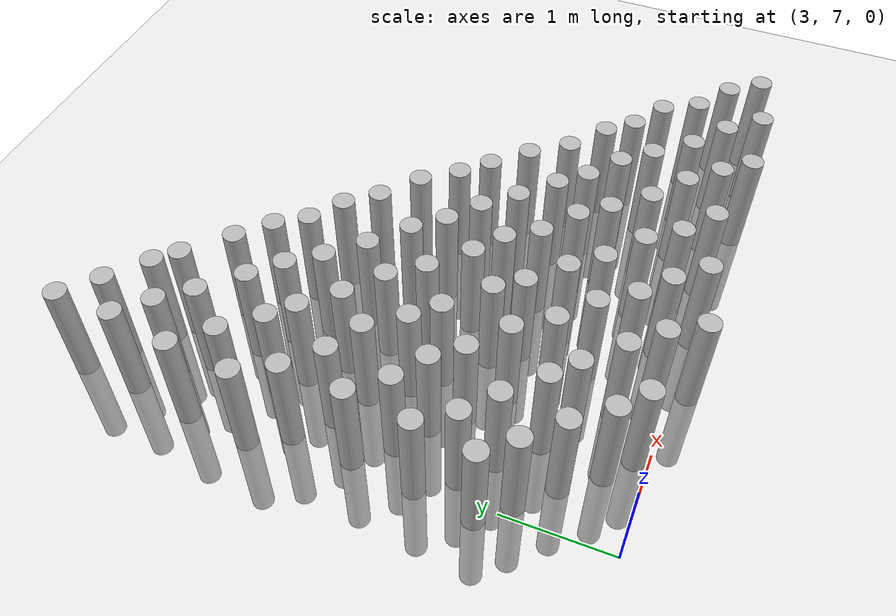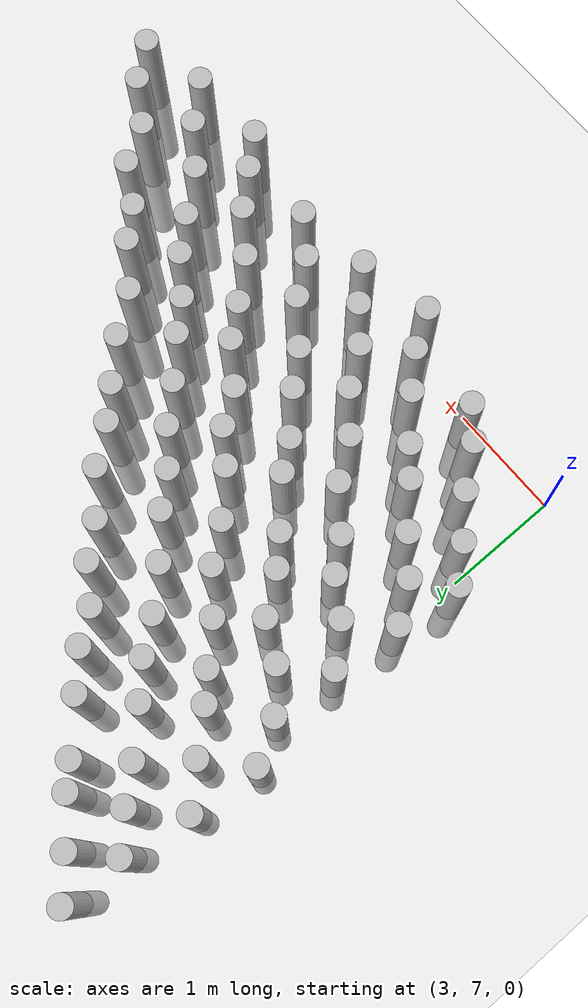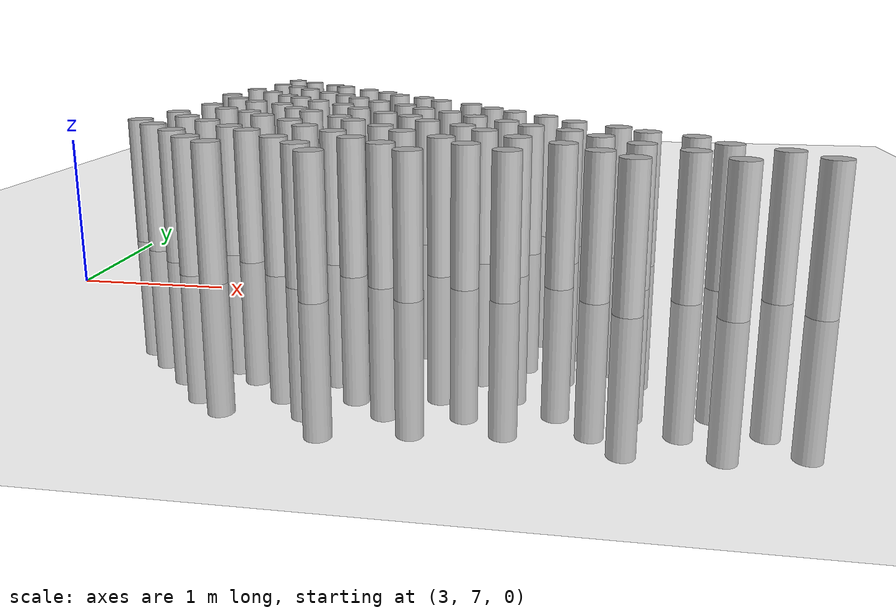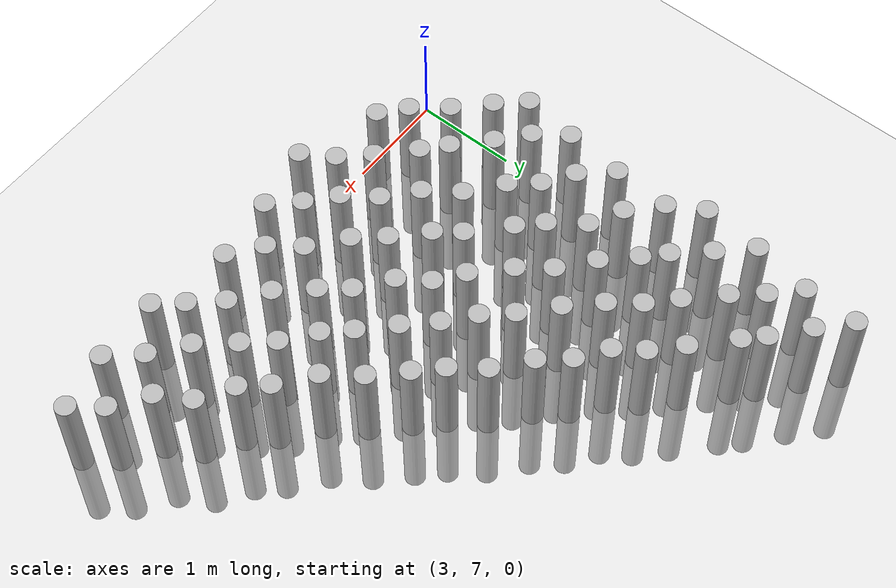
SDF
<sdf version="1.7">
 <world name="farmland_world">
  <model name="ground_plane">
   <static>1</static>
   <link name="link">
    <collision name="collision">
     <geometry><plane><normal>0 0 1</normal><size>40.0 40.0</size></plane></geometry>
     <surface><friction><ode><mu>100</mu><mu2>50</mu2></ode></friction></surface>
    </collision>
    <visual name="visual">
     <cast_shadows>0</cast_shadows>
     <geometry><plane><normal>0 0 1</normal><size>40.0 40.0</size></plane></geometry>
     <material>
      <script><uri>file://media/materials/scripts/gazebo.material</uri><name>Gazebo/Grey</name></script>
     </material>
    </visual>
   </link>
  </model>
  <model name="tree_2_136">
   <static>1</static>
   <link name="link">
    <collision name="collision">
     <geometry><cylinder><radius>0.1</radius><length>2.0</length></cylinder></geometry>
     <surface><friction><ode><mu>100</mu><mu2>50</mu2></ode></friction></surface>
    </collision>
    <visual name="visual">
     <geometry><cylinder><radius>0.1</radius><length>2.0</length></cylinder></geometry>
    </visual>
   </link>
   <pose>3.888693233230162 7.133511649381592 0 0 0 0</pose>
  </model>
  <model name="tree_2_137">
   <static>1</static>
   <link name="link">
    <collision name="collision">
     <geometry><cylinder><radius>0.1</radius><length>2.0</length></cylinder></geometry>
     <surface><friction><ode><mu>100</mu><mu2>50</mu2></ode></friction></surface>
    </collision>
    <visual name="visual">
     <geometry><cylinder><radius>0.1</radius><length>2.0</length></cylinder></geometry>
    </visual>
   </link>
   <pose>3.654509075606829 7.329846751826379 0 0 0 0</pose>
  </model>
  <model name="tree_2_138">
   <static>1</static>
   <link name="link">
    <collision name="collision">
     <geometry><cylinder><radius>0.1</radius><length>2.0</length></cylinder></geometry>
     <surface><friction><ode><mu>100</mu><mu2>50</mu2></ode></friction></surface>
    </collision>
    <visual name="visual">
     <geometry><cylinder><radius>0.1</radius><length>2.0</length></cylinder></geometry>
    </visual>
   </link>
   <pose>3.4091454209393324 7.635971533442951 0 0 0 0</pose>
  </model>
  <model name="tree_2_139">
   <static>1</static>
   <link name="link">
    <collision name="collision">
     <geometry><cylinder><radius>0.1</radius><length>2.0</length></cylinder></geometry>
     <surface><friction><ode><mu>100</mu><mu2>50</mu2></ode></friction></surface>
    </collision>
    <visual name="visual">
     <geometry><cylinder><radius>0.1</radius><length>2.0</length></cylinder></geometry>
    </visual>
   </link>
   <pose>3.123231357906554 7.918376817300706 0 0 0 0</pose>
  </model>
  <model name="tree_2_140">
   <static>1</static>
   <link name="link">
    <collision name="collision">
     <geometry><cylinder><radius>0.1</radius><length>2.0</length></cylinder></geometry>
     <surface><friction><ode><mu>100</mu><mu2>50</mu2></ode></friction></surface>
    </collision>
    <visual name="visual">
     <geometry><cylinder><radius>0.1</radius><length>2.0</length></cylinder></geometry>
    </visual>
   </link>
   <pose>2.8950278797702893 8.16930959599343 0 0 0 0</pose>
  </model>
  <model name="tree_2_172">
   <static>1</static>
   <link name="link">
    <collision name="collision">
     <geometry><cylinder><radius>0.1</radius><length>2.0</length></cylinder></geometry>
     <surface><friction><ode><mu>100</mu><mu2>50</mu2></ode></friction></surface>
    </collision>
    <visual name="visual">
     <geometry><cylinder><radius>0.1</radius><length>2.0</length></cylinder></geometry>
    </visual>
   </link>
   <pose>5.952450385894274 7.078202947347115 0 0 0 0</pose>
  </model>
  <model name="tree_2_173">
   <static>1</static>
   <link name="link">
    <collision name="collision">
     <geometry><cylinder><radius>0.1</radius><length>2.0</length></cylinder></geometry>
     <surface><friction><ode><mu>100</mu><mu2>50</mu2></ode></friction></surface>
    </collision>
    <visual name="visual">
     <geometry><cylinder><radius>0.1</radius><length>2.0</length></cylinder></geometry>
    </visual>
   </link>
   <pose>5.6549752811708665 7.302619387407444 0 0 0 0</pose>
  </model>
  <model name="tree_2_174">
   <static>1</static>
   <link name="link">
    <collision name="collision">
     <geometry><cylinder><radius>0.1</radius><length>2.0</length></cylinder></geometry>
     <surface><friction><ode><mu>100</mu><mu2>50</mu2></ode></friction></surface>
    </collision>
    <visual name="visual">
     <geometry><cylinder><radius>0.1</radius><length>2.0</length></cylinder></geometry>
    </visual>
   </link>
   <pose>5.4442150856880245 7.584135409848708 0 0 0 0</pose>
  </model>
  <model name="tree_2_175">
   <static>1</static>
   <link name="link">
    <collision name="collision">
     <geometry><cylinder><radius>0.1</radius><length>2.0</length></cylinder></geometry>
     <surface><friction><ode><mu>100</mu><mu2>50</mu2></ode></friction></surface>
    </collision>
    <visual name="visual">
     <geometry><cylinder><radius>0.1</radius><length>2.0</length></cylinder></geometry>
    </visual>
   </link>
   <pose>5.113794798143643 7.845583990078539 0 0 0 0</pose>
  </model>
  <model name="tree_2_176">
   <static>1</static>
   <link name="link">
    <collision name="collision">
     <geometry><cylinder><radius>0.1</radius><length>2.0</length></cylinder></geometry>
     <surface><friction><ode><mu>100</mu><mu2>50</mu2></ode></friction></surface>
    </collision>
    <visual name="visual">
     <geometry><cylinder><radius>0.1</radius><length>2.0</length></cylinder></geometry>
    </visual>
   </link>
   <pose>4.894133981281916 8.101473943822302 0 0 0 0</pose>
  </model>
  <model name="tree_2_177">
   <static>1</static>
   <link name="link">
    <collision name="collision">
     <geometry><cylinder><radius>0.1</radius><length>2.0</length></cylinder></geometry>
     <surface><friction><ode><mu>100</mu><mu2>50</mu2></ode></friction></surface>
    </collision>
    <visual name="visual">
     <geometry><cylinder><radius>0.1</radius><length>2.0</length></cylinder></geometry>
    </visual>
   </link>
   <pose>4.605704793721231 8.379927151728266 0 0 0 0</pose>
  </model>
  <model name="tree_2_178">
   <static>1</static>
   <link name="link">
    <collision name="collision">
     <geometry><cylinder><radius>0.1</radius><length>2.0</length></cylinder></geometry>
     <surface><friction><ode><mu>100</mu><mu2>50</mu2></ode></friction></surface>
    </collision>
    <visual name="visual">
     <geometry><cylinder><radius>0.1</radius><length>2.0</length></cylinder></geometry>
    </visual>
   </link>
   <pose>4.433490919706634 8.604116651368418 0 0 0 0</pose>
  </model>
  <model name="tree_2_179">
   <static>1</static>
   <link name="link">
    <collision name="collision">
     <geometry><cylinder><radius>0.1</radius><length>2.0</length></cylinder></geometry>
     <surface><friction><ode><mu>100</mu><mu2>50</mu2></ode></friction></surface>
    </collision>
    <visual name="visual">
     <geometry><cylinder><radius>0.1</radius><length>2.0</length></cylinder></geometry>
    </visual>
   </link>
   <pose>4.0929230212689935 8.91914617689645 0 0 0 0</pose>
  </model>
  <model name="tree_2_180">
   <static>1</static>
   <link name="link">
    <collision name="collision">
     <geometry><cylinder><radius>0.1</radius><length>2.0</length></cylinder></geometry>
     <surface><friction><ode><mu>100</mu><mu2>50</mu2></ode></friction></surface>
    </collision>
    <visual name="visual">
     <geometry><cylinder><radius>0.1</radius><length>2.0</length></cylinder></geometry>
    </visual>
   </link>
   <pose>3.890404682389312 9.12375075979459 0 0 0 0</pose>
  </model>
  <model name="tree_2_181">
   <static>1</static>
   <link name="link">
    <collision name="collision">
     <geometry><cylinder><radius>0.1</radius><length>2.0</length></cylinder></geometry>
     <surface><friction><ode><mu>100</mu><mu2>50</mu2></ode></friction></surface>
    </collision>
    <visual name="visual">
     <geometry><cylinder><radius>0.1</radius><length>2.0</length></cylinder></geometry>
    </visual>
   </link>
   <pose>3.661827254131897 9.429231106524302 0 0 0 0</pose>
  </model>
  <model name="tree_2_182">
   <static>1</static>
   <link name="link">
    <collision name="collision">
     <geometry><cylinder><radius>0.1</radius><length>2.0</length></cylinder></geometry>
     <surface><friction><ode><mu>100</mu><mu2>50</mu2></ode></friction></surface>
    </collision>
    <visual name="visual">
     <geometry><cylinder><radius>0.1</radius><length>2.0</length></cylinder></geometry>
    </visual>
   </link>
   <pose>3.3460470171255667 9.59312235304326 0 0 0 0</pose>
  </model>
  <model name="tree_2_183">
   <static>1</static>
   <link name="link">
    <collision name="collision">
     <geometry><cylinder><radius>0.1</radius><length>2.0</length></cylinder></geometry>
     <surface><friction><ode><mu>100</mu><mu2>50</mu2></ode></friction></surface>
    </collision>
    <visual name="visual">
     <geometry><cylinder><radius>0.1</radius><length>2.0</length></cylinder></geometry>
    </visual>
   </link>
   <pose>3.0629854131378105 9.857023025275346 0 0 0 0</pose>
  </model>
  <model name="tree_2_184">
   <static>1</static>
   <link name="link">
    <collision name="collision">
     <geometry><cylinder><radius>0.1</radius><length>2.0</length></cylinder></geometry>
     <surface><friction><ode><mu>100</mu><mu2>50</mu2></ode></friction></surface>
    </collision>
    <visual name="visual">
     <geometry><cylinder><radius>0.1</radius><length>2.0</length></cylinder></geometry>
    </visual>
   </link>
   <pose>2.8706002859704336 10.187543218371351 0 0 0 0</pose>
  </model>
  <model name="tree_2_208">
   <static>1</static>
   <link name="link">
    <collision name="collision">
     <geometry><cylinder><radius>0.1</radius><length>2.0</length></cylinder></geometry>
     <surface><friction><ode><mu>100</mu><mu2>50</mu2></ode></friction></surface>
    </collision>
    <visual name="visual">
     <geometry><cylinder><radius>0.1</radius><length>2.0</length></cylinder></geometry>
    </visual>
   </link>
   <pose>7.9558364137625635 7.0556702100759745 0 0 0 0</pose>
  </model>
  <model name="tree_2_209">
   <static>1</static>
   <link name="link">
    <collision name="collision">
     <geometry><cylinder><radius>0.1</radius><length>2.0</length></cylinder></geometry>
     <surface><friction><ode><mu>100</mu><mu2>50</mu2></ode></friction></surface>
    </collision>
    <visual name="visual">
     <geometry><cylinder><radius>0.1</radius><length>2.0</length></cylinder></geometry>
    </visual>
   </link>
   <pose>7.741567550530401 7.33041775570723 0 0 0 0</pose>
  </model>
  <model name="tree_2_210">
   <static>1</static>
   <link name="link">
    <collision name="collision">
     <geometry><cylinder><radius>0.1</radius><length>2.0</length></cylinder></geometry>
     <surface><friction><ode><mu>100</mu><mu2>50</mu2></ode></friction></surface>
    </collision>
    <visual name="visual">
     <geometry><cylinder><radius>0.1</radius><length>2.0</length></cylinder></geometry>
    </visual>
   </link>
   <pose>7.403168127117262 7.559136781097317 0 0 0 0</pose>
  </model>
  <model name="tree_2_211">
   <static>1</static>
   <link name="link">
    <collision name="collision">
     <geometry><cylinder><radius>0.1</radius><length>2.0</length></cylinder></geometry>
     <surface><friction><ode><mu>100</mu><mu2>50</mu2></ode></friction></surface>
    </collision>
    <visual name="visual">
     <geometry><cylinder><radius>0.1</radius><length>2.0</length></cylinder></geometry>
    </visual>
   </link>
   <pose>7.222942820960048 7.868198078070332 0 0 0 0</pose>
  </model>
  <model name="tree_2_212">
   <static>1</static>
   <link name="link">
    <collision name="collision">
     <geometry><cylinder><radius>0.1</radius><length>2.0</length></cylinder></geometry>
     <surface><friction><ode><mu>100</mu><mu2>50</mu2></ode></friction></surface>
    </collision>
    <visual name="visual">
     <geometry><cylinder><radius>0.1</radius><length>2.0</length></cylinder></geometry>
    </visual>
   </link>
   <pose>6.899074799613628 8.066492041130159 0 0 0 0</pose>
  </model>
  <model name="tree_2_213">
   <static>1</static>
   <link name="link">
    <collision name="collision">
     <geometry><cylinder><radius>0.1</radius><length>2.0</length></cylinder></geometry>
     <surface><friction><ode><mu>100</mu><mu2>50</mu2></ode></friction></surface>
    </collision>
    <visual name="visual">
     <geometry><cylinder><radius>0.1</radius><length>2.0</length></cylinder></geometry>
    </visual>
   </link>
   <pose>6.698600977082151 8.292292143059376 0 0 0 0</pose>
  </model>
  <model name="tree_2_214">
   <static>1</static>
   <link name="link">
    <collision name="collision">
     <geometry><cylinder><radius>0.1</radius><length>2.0</length></cylinder></geometry>
     <surface><friction><ode><mu>100</mu><mu2>50</mu2></ode></friction></surface>
    </collision>
    <visual name="visual">
     <geometry><cylinder><radius>0.1</radius><length>2.0</length></cylinder></geometry>
    </visual>
   </link>
   <pose>6.363341396567351 8.547092053314994 0 0 0 0</pose>
  </model>
  <model name="tree_2_215">
   <static>1</static>
   <link name="link">
    <collision name="collision">
     <geometry><cylinder><radius>0.1</radius><length>2.0</length></cylinder></geometry>
     <surface><friction><ode><mu>100</mu><mu2>50</mu2></ode></friction></surface>
    </collision>
    <visual name="visual">
     <geometry><cylinder><radius>0.1</radius><length>2.0</length></cylinder></geometry>
    </visual>
   </link>
   <pose>6.126679979161093 8.863656415832939 0 0 0 0</pose>
  </model>
  <model name="tree_2_216">
   <static>1</static>
   <link name="link">
    <collision name="collision">
     <geometry><cylinder><radius>0.1</radius><length>2.0</length></cylinder></geometry>
     <surface><friction><ode><mu>100</mu><mu2>50</mu2></ode></friction></surface>
    </collision>
    <visual name="visual">
     <geometry><cylinder><radius>0.1</radius><length>2.0</length></cylinder></geometry>
    </visual>
   </link>
   <pose>5.8485013888478115 9.144993997474778 0 0 0 0</pose>
  </model>
  <model name="tree_2_217">
   <static>1</static>
   <link name="link">
    <collision name="collision">
     <geometry><cylinder><radius>0.1</radius><length>2.0</length></cylinder></geometry>
     <surface><friction><ode><mu>100</mu><mu2>50</mu2></ode></friction></surface>
    </collision>
    <visual name="visual">
     <geometry><cylinder><radius>0.1</radius><length>2.0</length></cylinder></geometry>
    </visual>
   </link>
   <pose>5.6300340594649025 9.364776709456883 0 0 0 0</pose>
  </model>
  <model name="tree_2_218">
   <static>1</static>
   <link name="link">
    <collision name="collision">
     <geometry><cylinder><radius>0.1</radius><length>2.0</length></cylinder></geometry>
     <surface><friction><ode><mu>100</mu><mu2>50</mu2></ode></friction></surface>
    </collision>
    <visual name="visual">
     <geometry><cylinder><radius>0.1</radius><length>2.0</length></cylinder></geometry>
    </visual>
   </link>
   <pose>5.4064297371227195 9.657819548647934 0 0 0 0</pose>
  </model>
  <model name="tree_2_219">
   <static>1</static>
   <link name="link">
    <collision name="collision">
     <geometry><cylinder><radius>0.1</radius><length>2.0</length></cylinder></geometry>
     <surface><friction><ode><mu>100</mu><mu2>50</mu2></ode></friction></surface>
    </collision>
    <visual name="visual">
     <geometry><cylinder><radius>0.1</radius><length>2.0</length></cylinder></geometry>
    </visual>
   </link>
   <pose>5.086273557018613 9.916277305392974 0 0 0 0</pose>
  </model>
  <model name="tree_2_220">
   <static>1</static>
   <link name="link">
    <collision name="collision">
     <geometry><cylinder><radius>0.1</radius><length>2.0</length></cylinder></geometry>
     <surface><friction><ode><mu>100</mu><mu2>50</mu2></ode></friction></surface>
    </collision>
    <visual name="visual">
     <geometry><cylinder><radius>0.1</radius><length>2.0</length></cylinder></geometry>
    </visual>
   </link>
   <pose>4.871750153222545 10.170677854982912 0 0 0 0</pose>
  </model>
  <model name="tree_2_221">
   <static>1</static>
   <link name="link">
    <collision name="collision">
     <geometry><cylinder><radius>0.1</radius><length>2.0</length></cylinder></geometry>
     <surface><friction><ode><mu>100</mu><mu2>50</mu2></ode></friction></surface>
    </collision>
    <visual name="visual">
     <geometry><cylinder><radius>0.1</radius><length>2.0</length></cylinder></geometry>
    </visual>
   </link>
   <pose>4.588298820437973 10.367630110053323 0 0 0 0</pose>
  </model>
  <model name="tree_2_222">
   <static>1</static>
   <link name="link">
    <collision name="collision">
     <geometry><cylinder><radius>0.1</radius><length>2.0</length></cylinder></geometry>
     <surface><friction><ode><mu>100</mu><mu2>50</mu2></ode></friction></surface>
    </collision>
    <visual name="visual">
     <geometry><cylinder><radius>0.1</radius><length>2.0</length></cylinder></geometry>
    </visual>
   </link>
   <pose>4.408696738701235 10.622461447968764 0 0 0 0</pose>
  </model>
  <model name="tree_2_223">
   <static>1</static>
   <link name="link">
    <collision name="collision">
     <geometry><cylinder><radius>0.1</radius><length>2.0</length></cylinder></geometry>
     <surface><friction><ode><mu>100</mu><mu2>50</mu2></ode></friction></surface>
    </collision>
    <visual name="visual">
     <geometry><cylinder><radius>0.1</radius><length>2.0</length></cylinder></geometry>
    </visual>
   </link>
   <pose>4.152430932762426 10.865678735279044 0 0 0 0</pose>
  </model>
  <model name="tree_2_224">
   <static>1</static>
   <link name="link">
    <collision name="collision">
     <geometry><cylinder><radius>0.1</radius><length>2.0</length></cylinder></geometry>
     <surface><friction><ode><mu>100</mu><mu2>50</mu2></ode></friction></surface>
    </collision>
    <visual name="visual">
     <geometry><cylinder><radius>0.1</radius><length>2.0</length></cylinder></geometry>
    </visual>
   </link>
   <pose>3.807048227955117 11.19341693501709 0 0 0 0</pose>
  </model>
  <model name="tree_2_225">
   <static>1</static>
   <link name="link">
    <collision name="collision">
     <geometry><cylinder><radius>0.1</radius><length>2.0</length></cylinder></geometry>
     <surface><friction><ode><mu>100</mu><mu2>50</mu2></ode></friction></surface>
    </collision>
    <visual name="visual">
     <geometry><cylinder><radius>0.1</radius><length>2.0</length></cylinder></geometry>
    </visual>
   </link>
   <pose>3.639403190359429 11.360542560022534 0 0 0 0</pose>
  </model>
  <model name="tree_2_226">
   <static>1</static>
   <link name="link">
    <collision name="collision">
     <geometry><cylinder><radius>0.1</radius><length>2.0</length></cylinder></geometry>
     <surface><friction><ode><mu>100</mu><mu2>50</mu2></ode></friction></surface>
    </collision>
    <visual name="visual">
     <geometry><cylinder><radius>0.1</radius><length>2.0</length></cylinder></geometry>
    </visual>
   </link>
   <pose>3.3174018631343185 11.631470990059555 0 0 0 0</pose>
  </model>
  <model name="tree_2_227">
   <static>1</static>
   <link name="link">
    <collision name="collision">
     <geometry><cylinder><radius>0.1</radius><length>2.0</length></cylinder></geometry>
     <surface><friction><ode><mu>100</mu><mu2>50</mu2></ode></friction></surface>
    </collision>
    <visual name="visual">
     <geometry><cylinder><radius>0.1</radius><length>2.0</length></cylinder></geometry>
    </visual>
   </link>
   <pose>3.032423095262421 11.89007656196763 0 0 0 0</pose>
  </model>
  <model name="tree_2_414">
   <static>1</static>
   <link name="link">
    <collision name="collision">
     <geometry><cylinder><radius>0.1</radius><length>2.0</length></cylinder></geometry>
     <surface><friction><ode><mu>100</mu><mu2>50</mu2></ode></friction></surface>
    </collision>
    <visual name="visual">
     <geometry><cylinder><radius>0.1</radius><length>2.0</length></cylinder></geometry>
    </visual>
   </link>
   <pose>4.694424488251541 6.870581449803361 0 0 0 0</pose>
  </model>
  <model name="tree_2_415">
   <static>1</static>
   <link name="link">
    <collision name="collision">
     <geometry><cylinder><radius>0.1</radius><length>2.0</length></cylinder></geometry>
     <surface><friction><ode><mu>100</mu><mu2>50</mu2></ode></friction></surface>
    </collision>
    <visual name="visual">
     <geometry><cylinder><radius>0.1</radius><length>2.0</length></cylinder></geometry>
    </visual>
   </link>
   <pose>4.512259165251804 7.163615199318107 0 0 0 0</pose>
  </model>
  <model name="tree_2_416">
   <static>1</static>
   <link name="link">
    <collision name="collision">
     <geometry><cylinder><radius>0.1</radius><length>2.0</length></cylinder></geometry>
     <surface><friction><ode><mu>100</mu><mu2>50</mu2></ode></friction></surface>
    </collision>
    <visual name="visual">
     <geometry><cylinder><radius>0.1</radius><length>2.0</length></cylinder></geometry>
    </visual>
   </link>
   <pose>4.271443828924135 7.417870629831058 0 0 0 0</pose>
  </model>
  <model name="tree_2_417">
   <static>1</static>
   <link name="link">
    <collision name="collision">
     <geometry><cylinder><radius>0.1</radius><length>2.0</length></cylinder></geometry>
     <surface><friction><ode><mu>100</mu><mu2>50</mu2></ode></friction></surface>
    </collision>
    <visual name="visual">
     <geometry><cylinder><radius>0.1</radius><length>2.0</length></cylinder></geometry>
    </visual>
   </link>
   <pose>3.964626299940033 7.7113183892078725 0 0 0 0</pose>
  </model>
  <model name="tree_2_418">
   <static>1</static>
   <link name="link">
    <collision name="collision">
     <geometry><cylinder><radius>0.1</radius><length>2.0</length></cylinder></geometry>
     <surface><friction><ode><mu>100</mu><mu2>50</mu2></ode></friction></surface>
    </collision>
    <visual name="visual">
     <geometry><cylinder><radius>0.1</radius><length>2.0</length></cylinder></geometry>
    </visual>
   </link>
   <pose>3.7533877989019895 7.896384370758228 0 0 0 0</pose>
  </model>
  <model name="tree_2_419">
   <static>1</static>
   <link name="link">
    <collision name="collision">
     <geometry><cylinder><radius>0.1</radius><length>2.0</length></cylinder></geometry>
     <surface><friction><ode><mu>100</mu><mu2>50</mu2></ode></friction></surface>
    </collision>
    <visual name="visual">
     <geometry><cylinder><radius>0.1</radius><length>2.0</length></cylinder></geometry>
    </visual>
   </link>
   <pose>3.4533599392067087 8.186344273402574 0 0 0 0</pose>
  </model>
  <model name="tree_2_420">
   <static>1</static>
   <link name="link">
    <collision name="collision">
     <geometry><cylinder><radius>0.1</radius><length>2.0</length></cylinder></geometry>
     <surface><friction><ode><mu>100</mu><mu2>50</mu2></ode></friction></surface>
    </collision>
    <visual name="visual">
     <geometry><cylinder><radius>0.1</radius><length>2.0</length></cylinder></geometry>
    </visual>
   </link>
   <pose>3.180855373746649 8.416810719651275 0 0 0 0</pose>
  </model>
  <model name="tree_2_421">
   <static>1</static>
   <link name="link">
    <collision name="collision">
     <geometry><cylinder><radius>0.1</radius><length>2.0</length></cylinder></geometry>
     <surface><friction><ode><mu>100</mu><mu2>50</mu2></ode></friction></surface>
    </collision>
    <visual name="visual">
     <geometry><cylinder><radius>0.1</radius><length>2.0</length></cylinder></geometry>
    </visual>
   </link>
   <pose>2.9679653413036795 8.711844141299766 0 0 0 0</pose>
  </model>
  <model name="tree_2_453">
   <static>1</static>
   <link name="link">
    <collision name="collision">
     <geometry><cylinder><radius>0.1</radius><length>2.0</length></cylinder></geometry>
     <surface><friction><ode><mu>100</mu><mu2>50</mu2></ode></friction></surface>
    </collision>
    <visual name="visual">
     <geometry><cylinder><radius>0.1</radius><length>2.0</length></cylinder></geometry>
    </visual>
   </link>
   <pose>5.3167262637779364 6.99487707094682 0 0 0 0</pose>
  </model>
  <model name="tree_2_454">
   <static>1</static>
   <link name="link">
    <collision name="collision">
     <geometry><cylinder><radius>0.1</radius><length>2.0</length></cylinder></geometry>
     <surface><friction><ode><mu>100</mu><mu2>50</mu2></ode></friction></surface>
    </collision>
    <visual name="visual">
     <geometry><cylinder><radius>0.1</radius><length>2.0</length></cylinder></geometry>
    </visual>
   </link>
   <pose>5.081042043479526 7.253355868614857 0 0 0 0</pose>
  </model>
  <model name="tree_2_455">
   <static>1</static>
   <link name="link">
    <collision name="collision">
     <geometry><cylinder><radius>0.1</radius><length>2.0</length></cylinder></geometry>
     <surface><friction><ode><mu>100</mu><mu2>50</mu2></ode></friction></surface>
    </collision>
    <visual name="visual">
     <geometry><cylinder><radius>0.1</radius><length>2.0</length></cylinder></geometry>
    </visual>
   </link>
   <pose>4.819779328568664 7.472760022319296 0 0 0 0</pose>
  </model>
  <model name="tree_2_456">
   <static>1</static>
   <link name="link">
    <collision name="collision">
     <geometry><cylinder><radius>0.1</radius><length>2.0</length></cylinder></geometry>
     <surface><friction><ode><mu>100</mu><mu2>50</mu2></ode></friction></surface>
    </collision>
    <visual name="visual">
     <geometry><cylinder><radius>0.1</radius><length>2.0</length></cylinder></geometry>
    </visual>
   </link>
   <pose>4.607918084694503 7.766116967986567 0 0 0 0</pose>
  </model>
  <model name="tree_2_457">
   <static>1</static>
   <link name="link">
    <collision name="collision">
     <geometry><cylinder><radius>0.1</radius><length>2.0</length></cylinder></geometry>
     <surface><friction><ode><mu>100</mu><mu2>50</mu2></ode></friction></surface>
    </collision>
    <visual name="visual">
     <geometry><cylinder><radius>0.1</radius><length>2.0</length></cylinder></geometry>
    </visual>
   </link>
   <pose>4.315517529025326 8.016492051092163 0 0 0 0</pose>
  </model>
  <model name="tree_2_458">
   <static>1</static>
   <link name="link">
    <collision name="collision">
     <geometry><cylinder><radius>0.1</radius><length>2.0</length></cylinder></geometry>
     <surface><friction><ode><mu>100</mu><mu2>50</mu2></ode></friction></surface>
    </collision>
    <visual name="visual">
     <geometry><cylinder><radius>0.1</radius><length>2.0</length></cylinder></geometry>
    </visual>
   </link>
   <pose>4.093970977008203 8.32517646430303 0 0 0 0</pose>
  </model>
  <model name="tree_2_459">
   <static>1</static>
   <link name="link">
    <collision name="collision">
     <geometry><cylinder><radius>0.1</radius><length>2.0</length></cylinder></geometry>
     <surface><friction><ode><mu>100</mu><mu2>50</mu2></ode></friction></surface>
    </collision>
    <visual name="visual">
     <geometry><cylinder><radius>0.1</radius><length>2.0</length></cylinder></geometry>
    </visual>
   </link>
   <pose>3.7714064971297283 8.582797637863566 0 0 0 0</pose>
  </model>
  <model name="tree_2_460">
   <static>1</static>
   <link name="link">
    <collision name="collision">
     <geometry><cylinder><radius>0.1</radius><length>2.0</length></cylinder></geometry>
     <surface><friction><ode><mu>100</mu><mu2>50</mu2></ode></friction></surface>
    </collision>
    <visual name="visual">
     <geometry><cylinder><radius>0.1</radius><length>2.0</length></cylinder></geometry>
    </visual>
   </link>
   <pose>3.568150553219607 8.821732544916662 0 0 0 0</pose>
  </model>
  <model name="tree_2_461">
   <static>1</static>
   <link name="link">
    <collision name="collision">
     <geometry><cylinder><radius>0.1</radius><length>2.0</length></cylinder></geometry>
     <surface><friction><ode><mu>100</mu><mu2>50</mu2></ode></friction></surface>
    </collision>
    <visual name="visual">
     <geometry><cylinder><radius>0.1</radius><length>2.0</length></cylinder></geometry>
    </visual>
   </link>
   <pose>3.2839316504617755 9.009784880074877 0 0 0 0</pose>
  </model>
  <model name="tree_2_462">
   <static>1</static>
   <link name="link">
    <collision name="collision">
     <geometry><cylinder><radius>0.1</radius><length>2.0</length></cylinder></geometry>
     <surface><friction><ode><mu>100</mu><mu2>50</mu2></ode></friction></surface>
    </collision>
    <visual name="visual">
     <geometry><cylinder><radius>0.1</radius><length>2.0</length></cylinder></geometry>
    </visual>
   </link>
   <pose>3.0298036590419155 9.29274655015253 0 0 0 0</pose>
  </model>
  <model name="tree_2_490">
   <static>1</static>
   <link name="link">
    <collision name="collision">
     <geometry><cylinder><radius>0.1</radius><length>2.0</length></cylinder></geometry>
     <surface><friction><ode><mu>100</mu><mu2>50</mu2></ode></friction></surface>
    </collision>
    <visual name="visual">
     <geometry><cylinder><radius>0.1</radius><length>2.0</length></cylinder></geometry>
    </visual>
   </link>
   <pose>6.747186979006258 6.915327336026179 0 0 0 0</pose>
  </model>
  <model name="tree_2_491">
   <static>1</static>
   <link name="link">
    <collision name="collision">
     <geometry><cylinder><radius>0.1</radius><length>2.0</length></cylinder></geometry>
     <surface><friction><ode><mu>100</mu><mu2>50</mu2></ode></friction></surface>
    </collision>
    <visual name="visual">
     <geometry><cylinder><radius>0.1</radius><length>2.0</length></cylinder></geometry>
    </visual>
   </link>
   <pose>6.541713320764692 7.153533238972991 0 0 0 0</pose>
  </model>
  <model name="tree_2_492">
   <static>1</static>
   <link name="link">
    <collision name="collision">
     <geometry><cylinder><radius>0.1</radius><length>2.0</length></cylinder></geometry>
     <surface><friction><ode><mu>100</mu><mu2>50</mu2></ode></friction></surface>
    </collision>
    <visual name="visual">
     <geometry><cylinder><radius>0.1</radius><length>2.0</length></cylinder></geometry>
    </visual>
   </link>
   <pose>6.3020962801080875 7.4183642916262515 0 0 0 0</pose>
  </model>
  <model name="tree_2_493">
   <static>1</static>
   <link name="link">
    <collision name="collision">
     <geometry><cylinder><radius>0.1</radius><length>2.0</length></cylinder></geometry>
     <surface><friction><ode><mu>100</mu><mu2>50</mu2></ode></friction></surface>
    </collision>
    <visual name="visual">
     <geometry><cylinder><radius>0.1</radius><length>2.0</length></cylinder></geometry>
    </visual>
   </link>
   <pose>5.978684391982626 7.66441952000785 0 0 0 0</pose>
  </model>
  <model name="tree_2_494">
   <static>1</static>
   <link name="link">
    <collision name="collision">
     <geometry><cylinder><radius>0.1</radius><length>2.0</length></cylinder></geometry>
     <surface><friction><ode><mu>100</mu><mu2>50</mu2></ode></friction></surface>
    </collision>
    <visual name="visual">
     <geometry><cylinder><radius>0.1</radius><length>2.0</length></cylinder></geometry>
    </visual>
   </link>
   <pose>5.711923251711461 7.963961073841952 0 0 0 0</pose>
  </model>
  <model name="tree_2_495">
   <static>1</static>
   <link name="link">
    <collision name="collision">
     <geometry><cylinder><radius>0.1</radius><length>2.0</length></cylinder></geometry>
     <surface><friction><ode><mu>100</mu><mu2>50</mu2></ode></friction></surface>
    </collision>
    <visual name="visual">
     <geometry><cylinder><radius>0.1</radius><length>2.0</length></cylinder></geometry>
    </visual>
   </link>
   <pose>5.515467026569733 8.206858386193204 0 0 0 0</pose>
  </model>
  <model name="tree_2_496">
   <static>1</static>
   <link name="link">
    <collision name="collision">
     <geometry><cylinder><radius>0.1</radius><length>2.0</length></cylinder></geometry>
     <surface><friction><ode><mu>100</mu><mu2>50</mu2></ode></friction></surface>
    </collision>
    <visual name="visual">
     <geometry><cylinder><radius>0.1</radius><length>2.0</length></cylinder></geometry>
    </visual>
   </link>
   <pose>5.200333376674219 8.439116687887442 0 0 0 0</pose>
  </model>
  <model name="tree_2_497">
   <static>1</static>
   <link name="link">
    <collision name="collision">
     <geometry><cylinder><radius>0.1</radius><length>2.0</length></cylinder></geometry>
     <surface><friction><ode><mu>100</mu><mu2>50</mu2></ode></friction></surface>
    </collision>
    <visual name="visual">
     <geometry><cylinder><radius>0.1</radius><length>2.0</length></cylinder></geometry>
    </visual>
   </link>
   <pose>5.012469929930804 8.71080820746061 0 0 0 0</pose>
  </model>
  <model name="tree_2_498">
   <static>1</static>
   <link name="link">
    <collision name="collision">
     <geometry><cylinder><radius>0.1</radius><length>2.0</length></cylinder></geometry>
     <surface><friction><ode><mu>100</mu><mu2>50</mu2></ode></friction></surface>
    </collision>
    <visual name="visual">
     <geometry><cylinder><radius>0.1</radius><length>2.0</length></cylinder></geometry>
    </visual>
   </link>
   <pose>4.755530273327819 8.900165110711722 0 0 0 0</pose>
  </model>
  <model name="tree_2_499">
   <static>1</static>
   <link name="link">
    <collision name="collision">
     <geometry><cylinder><radius>0.1</radius><length>2.0</length></cylinder></geometry>
     <surface><friction><ode><mu>100</mu><mu2>50</mu2></ode></friction></surface>
    </collision>
    <visual name="visual">
     <geometry><cylinder><radius>0.1</radius><length>2.0</length></cylinder></geometry>
    </visual>
   </link>
   <pose>4.451065199745261 9.197874380513568 0 0 0 0</pose>
  </model>
  <model name="tree_2_500">
   <static>1</static>
   <link name="link">
    <collision name="collision">
     <geometry><cylinder><radius>0.1</radius><length>2.0</length></cylinder></geometry>
     <surface><friction><ode><mu>100</mu><mu2>50</mu2></ode></friction></surface>
    </collision>
    <visual name="visual">
     <geometry><cylinder><radius>0.1</radius><length>2.0</length></cylinder></geometry>
    </visual>
   </link>
   <pose>4.232042042254356 9.478284355588743 0 0 0 0</pose>
  </model>
  <model name="tree_2_501">
   <static>1</static>
   <link name="link">
    <collision name="collision">
     <geometry><cylinder><radius>0.1</radius><length>2.0</length></cylinder></geometry>
     <surface><friction><ode><mu>100</mu><mu2>50</mu2></ode></friction></surface>
    </collision>
    <visual name="visual">
     <geometry><cylinder><radius>0.1</radius><length>2.0</length></cylinder></geometry>
    </visual>
   </link>
   <pose>3.9223623291251806 9.729180491194507 0 0 0 0</pose>
  </model>
  <model name="tree_2_502">
   <static>1</static>
   <link name="link">
    <collision name="collision">
     <geometry><cylinder><radius>0.1</radius><length>2.0</length></cylinder></geometry>
     <surface><friction><ode><mu>100</mu><mu2>50</mu2></ode></friction></surface>
    </collision>
    <visual name="visual">
     <geometry><cylinder><radius>0.1</radius><length>2.0</length></cylinder></geometry>
    </visual>
   </link>
   <pose>3.6580382440649335 10.005810489067501 0 0 0 0</pose>
  </model>
  <model name="tree_2_503">
   <static>1</static>
   <link name="link">
    <collision name="collision">
     <geometry><cylinder><radius>0.1</radius><length>2.0</length></cylinder></geometry>
     <surface><friction><ode><mu>100</mu><mu2>50</mu2></ode></friction></surface>
    </collision>
    <visual name="visual">
     <geometry><cylinder><radius>0.1</radius><length>2.0</length></cylinder></geometry>
    </visual>
   </link>
   <pose>3.4645376553900165 10.189264881045057 0 0 0 0</pose>
  </model>
  <model name="tree_2_504">
   <static>1</static>
   <link name="link">
    <collision name="collision">
     <geometry><cylinder><radius>0.1</radius><length>2.0</length></cylinder></geometry>
     <surface><friction><ode><mu>100</mu><mu2>50</mu2></ode></friction></surface>
    </collision>
    <visual name="visual">
     <geometry><cylinder><radius>0.1</radius><length>2.0</length></cylinder></geometry>
    </visual>
   </link>
   <pose>3.2004010919190757 10.489592315998332 0 0 0 0</pose>
  </model>
  <model name="tree_2_505">
   <static>1</static>
   <link name="link">
    <collision name="collision">
     <geometry><cylinder><radius>0.1</radius><length>2.0</length></cylinder></geometry>
     <surface><friction><ode><mu>100</mu><mu2>50</mu2></ode></friction></surface>
    </collision>
    <visual name="visual">
     <geometry><cylinder><radius>0.1</radius><length>2.0</length></cylinder></geometry>
    </visual>
   </link>
   <pose>2.924112338791858 10.776580731895502 0 0 0 0</pose>
  </model>
  <model name="tree_2_529">
   <static>1</static>
   <link name="link">
    <collision name="collision">
     <geometry><cylinder><radius>0.1</radius><length>2.0</length></cylinder></geometry>
     <surface><friction><ode><mu>100</mu><mu2>50</mu2></ode></friction></surface>
    </collision>
    <visual name="visual">
     <geometry><cylinder><radius>0.1</radius><length>2.0</length></cylinder></geometry>
    </visual>
   </link>
   <pose>7.400628963406755 6.944557451080172 0 0 0 0</pose>
  </model>
  <model name="tree_2_530">
   <static>1</static>
   <link name="link">
    <collision name="collision">
     <geometry><cylinder><radius>0.1</radius><length>2.0</length></cylinder></geometry>
     <surface><friction><ode><mu>100</mu><mu2>50</mu2></ode></friction></surface>
    </collision>
    <visual name="visual">
     <geometry><cylinder><radius>0.1</radius><length>2.0</length></cylinder></geometry>
    </visual>
   </link>
   <pose>7.145215640994573 7.2326370048598125 0 0 0 0</pose>
  </model>
  <model name="tree_2_531">
   <static>1</static>
   <link name="link">
    <collision name="collision">
     <geometry><cylinder><radius>0.1</radius><length>2.0</length></cylinder></geometry>
     <surface><friction><ode><mu>100</mu><mu2>50</mu2></ode></friction></surface>
    </collision>
    <visual name="visual">
     <geometry><cylinder><radius>0.1</radius><length>2.0</length></cylinder></geometry>
    </visual>
   </link>
   <pose>6.822248346395862 7.479411142852738 0 0 0 0</pose>
  </model>
  <model name="tree_2_532">
   <static>1</static>
   <link name="link">
    <collision name="collision">
     <geometry><cylinder><radius>0.1</radius><length>2.0</length></cylinder></geometry>
     <surface><friction><ode><mu>100</mu><mu2>50</mu2></ode></friction></surface>
    </collision>
    <visual name="visual">
     <geometry><cylinder><radius>0.1</radius><length>2.0</length></cylinder></geometry>
    </visual>
   </link>
   <pose>6.555811154462774 7.795779922554715 0 0 0 0</pose>
  </model>
  <model name="tree_2_533">
   <static>1</static>
   <link name="link">
    <collision name="collision">
     <geometry><cylinder><radius>0.1</radius><length>2.0</length></cylinder></geometry>
     <surface><friction><ode><mu>100</mu><mu2>50</mu2></ode></friction></surface>
    </collision>
    <visual name="visual">
     <geometry><cylinder><radius>0.1</radius><length>2.0</length></cylinder></geometry>
    </visual>
   </link>
   <pose>6.3343522062999895 8.047332765254088 0 0 0 0</pose>
  </model>
  <model name="tree_2_534">
   <static>1</static>
   <link name="link">
    <collision name="collision">
     <geometry><cylinder><radius>0.1</radius><length>2.0</length></cylinder></geometry>
     <surface><friction><ode><mu>100</mu><mu2>50</mu2></ode></friction></surface>
    </collision>
    <visual name="visual">
     <geometry><cylinder><radius>0.1</radius><length>2.0</length></cylinder></geometry>
    </visual>
   </link>
   <pose>6.037928870373546 8.271314944548896 0 0 0 0</pose>
  </model>
  <model name="tree_2_535">
   <static>1</static>
   <link name="link">
    <collision name="collision">
     <geometry><cylinder><radius>0.1</radius><length>2.0</length></cylinder></geometry>
     <surface><friction><ode><mu>100</mu><mu2>50</mu2></ode></friction></surface>
    </collision>
    <visual name="visual">
     <geometry><cylinder><radius>0.1</radius><length>2.0</length></cylinder></geometry>
    </visual>
   </link>
   <pose>5.8315782823911295 8.497140211374433 0 0 0 0</pose>
  </model>
  <model name="tree_2_536">
   <static>1</static>
   <link name="link">
    <collision name="collision">
     <geometry><cylinder><radius>0.1</radius><length>2.0</length></cylinder></geometry>
     <surface><friction><ode><mu>100</mu><mu2>50</mu2></ode></friction></surface>
    </collision>
    <visual name="visual">
     <geometry><cylinder><radius>0.1</radius><length>2.0</length></cylinder></geometry>
    </visual>
   </link>
   <pose>5.547679418908569 8.769487658378852 0 0 0 0</pose>
  </model>
  <model name="tree_2_537">
   <static>1</static>
   <link name="link">
    <collision name="collision">
     <geometry><cylinder><radius>0.1</radius><length>2.0</length></cylinder></geometry>
     <surface><friction><ode><mu>100</mu><mu2>50</mu2></ode></friction></surface>
    </collision>
    <visual name="visual">
     <geometry><cylinder><radius>0.1</radius><length>2.0</length></cylinder></geometry>
    </visual>
   </link>
   <pose>5.299739613320908 9.03331203185881 0 0 0 0</pose>
  </model>
  <model name="tree_2_538">
   <static>1</static>
   <link name="link">
    <collision name="collision">
     <geometry><cylinder><radius>0.1</radius><length>2.0</length></cylinder></geometry>
     <surface><friction><ode><mu>100</mu><mu2>50</mu2></ode></friction></surface>
    </collision>
    <visual name="visual">
     <geometry><cylinder><radius>0.1</radius><length>2.0</length></cylinder></geometry>
    </visual>
   </link>
   <pose>5.030761002687708 9.251255296101887 0 0 0 0</pose>
  </model>
  <model name="tree_2_539">
   <static>1</static>
   <link name="link">
    <collision name="collision">
     <geometry><cylinder><radius>0.1</radius><length>2.0</length></cylinder></geometry>
     <surface><friction><ode><mu>100</mu><mu2>50</mu2></ode></friction></surface>
    </collision>
    <visual name="visual">
     <geometry><cylinder><radius>0.1</radius><length>2.0</length></cylinder></geometry>
    </visual>
   </link>
   <pose>4.815028683537825 9.49735767253396 0 0 0 0</pose>
  </model>
  <model name="tree_2_540">
   <static>1</static>
   <link name="link">
    <collision name="collision">
     <geometry><cylinder><radius>0.1</radius><length>2.0</length></cylinder></geometry>
     <surface><friction><ode><mu>100</mu><mu2>50</mu2></ode></friction></surface>
    </collision>
    <visual name="visual">
     <geometry><cylinder><radius>0.1</radius><length>2.0</length></cylinder></geometry>
    </visual>
   </link>
   <pose>4.507715994391118 9.767648295891808 0 0 0 0</pose>
  </model>
  <model name="tree_2_541">
   <static>1</static>
   <link name="link">
    <collision name="collision">
     <geometry><cylinder><radius>0.1</radius><length>2.0</length></cylinder></geometry>
     <surface><friction><ode><mu>100</mu><mu2>50</mu2></ode></friction></surface>
    </collision>
    <visual name="visual">
     <geometry><cylinder><radius>0.1</radius><length>2.0</length></cylinder></geometry>
    </visual>
   </link>
   <pose>4.238715469609553 10.051555397617355 0 0 0 0</pose>
  </model>
  <model name="tree_2_542">
   <static>1</static>
   <link name="link">
    <collision name="collision">
     <geometry><cylinder><radius>0.1</radius><length>2.0</length></cylinder></geometry>
     <surface><friction><ode><mu>100</mu><mu2>50</mu2></ode></friction></surface>
    </collision>
    <visual name="visual">
     <geometry><cylinder><radius>0.1</radius><length>2.0</length></cylinder></geometry>
    </visual>
   </link>
   <pose>4.036125287565497 10.315942215273642 0 0 0 0</pose>
  </model>
  <model name="tree_2_543">
   <static>1</static>
   <link name="link">
    <collision name="collision">
     <geometry><cylinder><radius>0.1</radius><length>2.0</length></cylinder></geometry>
     <surface><friction><ode><mu>100</mu><mu2>50</mu2></ode></friction></surface>
    </collision>
    <visual name="visual">
     <geometry><cylinder><radius>0.1</radius><length>2.0</length></cylinder></geometry>
    </visual>
   </link>
   <pose>3.7946030763985714 10.546524315949402 0 0 0 0</pose>
  </model>
  <model name="tree_2_544">
   <static>1</static>
   <link name="link">
    <collision name="collision">
     <geometry><cylinder><radius>0.1</radius><length>2.0</length></cylinder></geometry>
     <surface><friction><ode><mu>100</mu><mu2>50</mu2></ode></friction></surface>
    </collision>
    <visual name="visual">
     <geometry><cylinder><radius>0.1</radius><length>2.0</length></cylinder></geometry>
    </visual>
   </link>
   <pose>3.4961245311779967 10.85257018778077 0 0 0 0</pose>
  </model>
  <model name="tree_2_545">
   <static>1</static>
   <link name="link">
    <collision name="collision">
     <geometry><cylinder><radius>0.1</radius><length>2.0</length></cylinder></geometry>
     <surface><friction><ode><mu>100</mu><mu2>50</mu2></ode></friction></surface>
    </collision>
    <visual name="visual">
     <geometry><cylinder><radius>0.1</radius><length>2.0</length></cylinder></geometry>
    </visual>
   </link>
   <pose>3.2766789544770663 11.111228358032177 0 0 0 0</pose>
  </model>
  <model name="tree_2_546">
   <static>1</static>
   <link name="link">
    <collision name="collision">
     <geometry><cylinder><radius>0.1</radius><length>2.0</length></cylinder></geometry>
     <surface><friction><ode><mu>100</mu><mu2>50</mu2></ode></friction></surface>
    </collision>
    <visual name="visual">
     <geometry><cylinder><radius>0.1</radius><length>2.0</length></cylinder></geometry>
    </visual>
   </link>
   <pose>3.022783061662263 11.356320542835501 0 0 0 0</pose>
  </model>
 </world>
</sdf>
